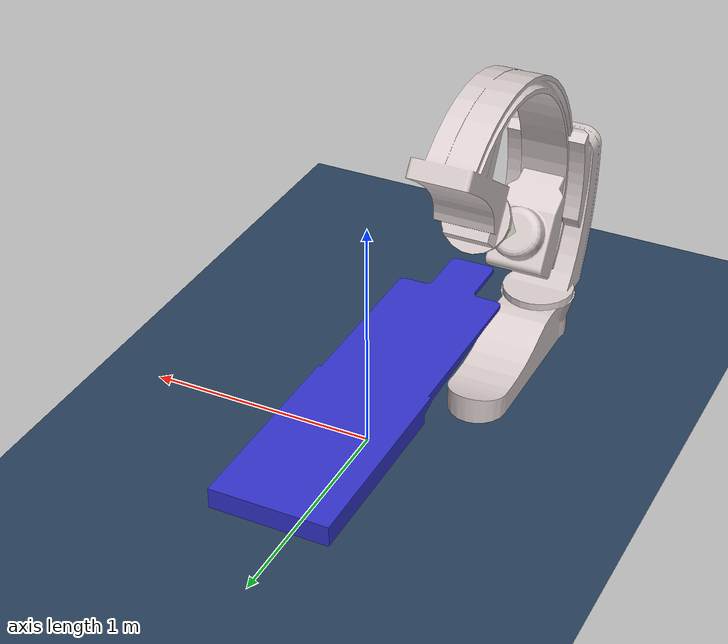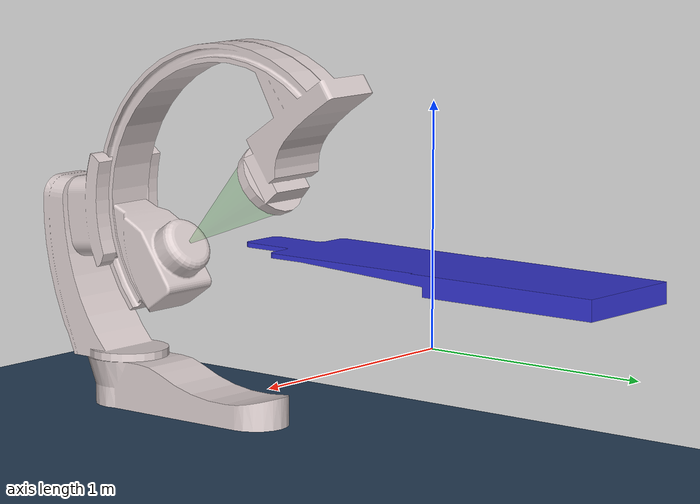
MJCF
<mujoco model="C-arm">
  <compiler angle="radian" autolimits="true" convexhull="false" fusestatic="false"/>
  <option gravity="0 0 0"/>
  <visual>
    <global elevation="-20"/>
    <quality shadowsize="8192"/>
    <headlight ambient="0.3 0.3 0.3" diffuse="0.6 0.6 0.6" specular="0 0 0"/>
    <rgba haze="0.15 0.25 0.35 1"/>
  </visual>
  <asset>
    <texture type="skybox" builtin="gradient" rgb1="0.3 0.5 0.7" rgb2="0 0 0" width="512" height="3072"/>
    <texture type="2d" name="groundplane" builtin="checker" mark="edge" rgb1="0.2 0.3 0.4" rgb2="0.1 0.2 0.3" markrgb="0.8 0.8 0.8" width="300" height="300"/>
    <material name="black" rgba="0.15 0.15 0.15 1"/>
    <material name="xray" rgba="0.1 0.8 0.1 0.1"/>
    <material name="grey" rgba="0.85 0.8 0.8 1"/>
    <material name="blue" rgba="0.2 0.2 0.8 1"/>
    <material name="groundplane" texture="groundplane" texuniform="true" texrepeat="5 5" reflectance="0.2"/>
    <mesh name="base" file="base.obj" scale="0.35 0.35 0.35"/>
    <mesh name="X_rotation_base" file="X_rotation_base.obj" scale="0.35 0.35 0.35"/>
    <mesh name="Y_rotation_base" file="Y_rotation_base.obj" scale="0.35 0.35 0.35"/>
    <mesh name="X-ray_visual" file="X-ray_visual.obj" scale="0.35 0.35 0.35"/>
    <mesh name="bed" file="bed.obj" scale="0.25 0.25 0.25"/>
  </asset>
  <worldbody>
    <geom name="floor" size="3 3 0.05" pos="0 0 -0.5" type="plane" material="groundplane"/>
    <geom name="base" type="mesh" contype="0" conaffinity="0" density="10" material="grey" mesh="base"/>
    <light pos="0 0.1 2.5" dir="0 0 -1"/>
    <body name="BX_rotation_base" pos="-0.071428 -1.71504 0.369075" quat="0.527541 -0.470848 -0.527545 0.470848">
      <joint name="X_rotation" range="-1.5 1.5" pos="0 0 0" axis="1 0 0" damping="10"/>
      <geom name="GX_rotation_base" type="mesh" contype="0" conaffinity="0" density="10" material="grey" mesh="X_rotation_base"/>
      <body name="BY_rotation_base" pos="0.635719 0 0.0175" quat="0.271388 0.652954 0.271388 -0.652954">
        <joint name="Y_rotation" range="-0.2 1.9" pos="0 0 0" axis="1 0 0" damping="10"/>
        <geom name="GY_rotation_base" type="mesh" contype="0" conaffinity="0" density="10" material="grey" mesh="Y_rotation_base"/>
        <body name="X-ray_visual" pos="0.0175 0.00855256 0.0279742" quat="0.147808 0.989007 0.000617517 0.0041319">
          <geom type="mesh" contype="0" conaffinity="0" density="1" material="xray" mesh="X-ray_visual"/>
        </body>
      </body>
    </body>
    <body name="Bbed" pos="-0.05102 0 0.25" quat="0.499998 0.5 -0.5 0.500002">
      <joint name="bed_sliding" range="0.3 0.7" pos="0 0 0" axis="0 0 1" type="slide" damping="10"/>
      <geom name="Gbed" type="mesh" density="100" material="blue" mesh="bed" contype="0" conaffinity="0"/>
    </body>
  </worldbody>
  <actuator>
    <position name="alpha" joint="X_rotation" kp="20" ctrlrange="-1.5 1.5"/>
    <position name="beta" joint="Y_rotation" kp="20" ctrlrange="-0.2 1.9"/>
    <position name="bed" joint="bed_sliding" kp="20" ctrlrange="0.3 0.7"/>
  </actuator>
</mujoco>
